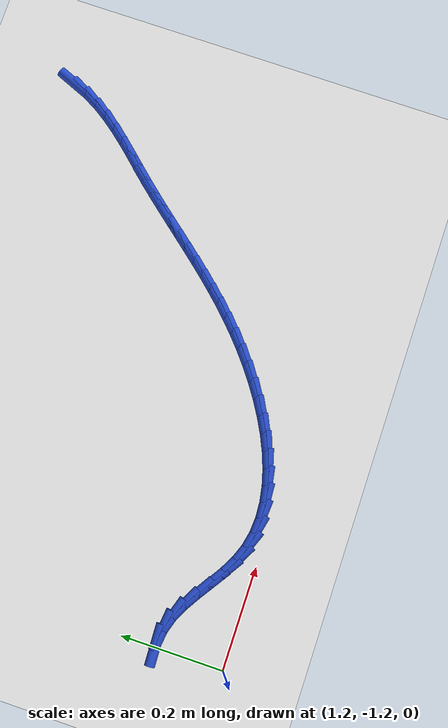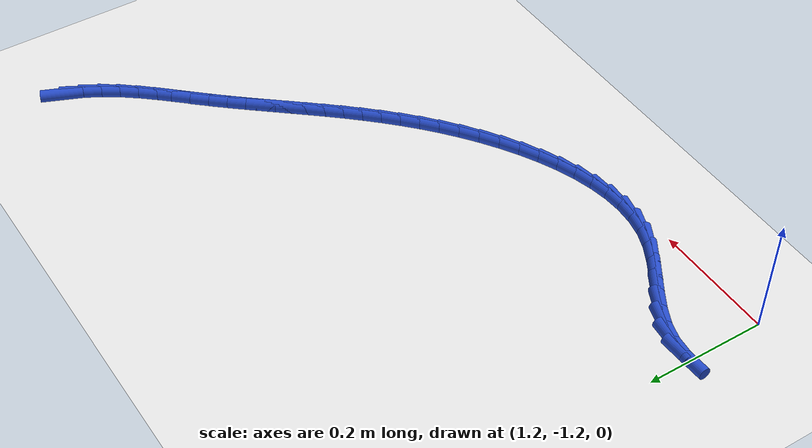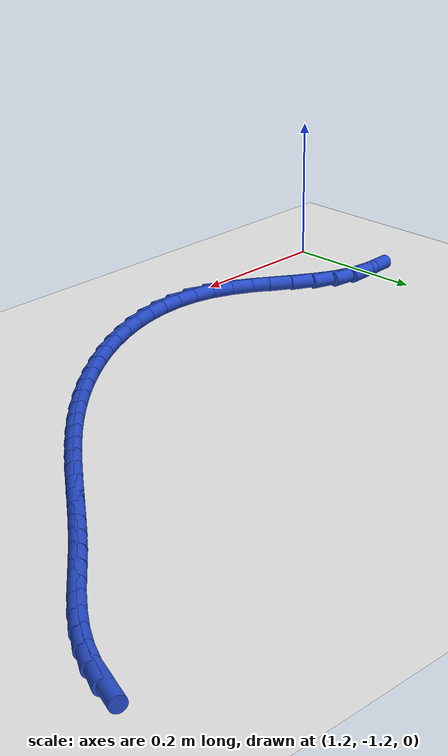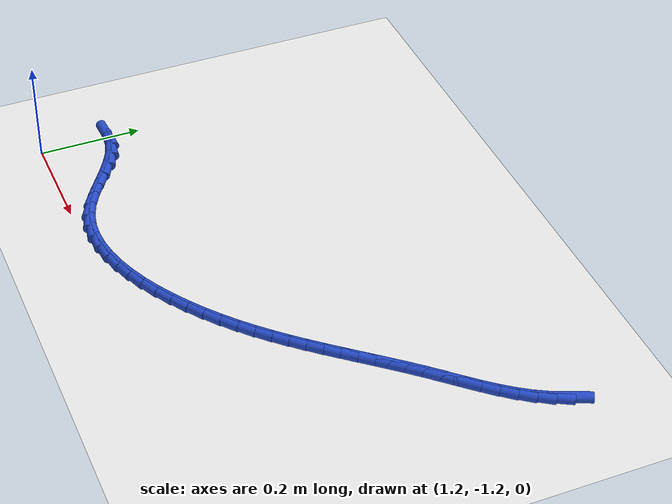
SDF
<sdf version="1.6">
 <world name="default">
  <model name="ground_plane">
   <static>1</static>
   <link name="link">
    <collision name="collision">
     <geometry><plane><normal>0 0 1</normal><size>100 100</size></plane></geometry>
     <surface><friction><ode><mu>100</mu><mu2>50</mu2></ode></friction></surface>
    </collision>
    <visual name="visual">
     <cast_shadows>0</cast_shadows>
     <geometry><plane><normal>0 0 1</normal><size>100 100</size></plane></geometry>
     <material>
      <script><uri>file://media/materials/scripts/gazebo.material</uri><name>Gazebo/WhiteGlow</name></script>
     </material>
    </visual>
   </link>
  </model>
  <model name="line">
   <link name="link_141">
    <pose>2.184938260751431 -0.564545507955103 0.01 0 1.57 1.1751922833800879</pose>
    <collision name="collision">
     <geometry><cylinder><radius>0.01</radius><length>0.08</length></cylinder></geometry>
    </collision>
    <visual name="visual">
     <material>
      <script><name>Gazebo/Blue</name><uri>file://media/materials/scripts/gazebo.material</uri></script>
     </material>
     <geometry><cylinder><radius>0.01</radius><length>0.08</length></cylinder></geometry>
    </visual>
   </link>
   <link name="link_142">
    <pose>2.173055490699033 -0.5929989830696546 0.01 0 1.57 1.0701133090406034</pose>
    <collision name="collision">
     <geometry><cylinder><radius>0.01</radius><length>0.08</length></cylinder></geometry>
    </collision>
    <visual name="visual">
     <material>
      <script><name>Gazebo/Blue</name><uri>file://media/materials/scripts/gazebo.material</uri></script>
     </material>
     <geometry><cylinder><radius>0.01</radius><length>0.08</length></cylinder></geometry>
    </visual>
   </link>
   <link name="link_143">
    <pose>2.158248025143962 -0.6200599201007736 0.01 0 1.57 0.9836360142983622</pose>
    <collision name="collision">
     <geometry><cylinder><radius>0.01</radius><length>0.08</length></cylinder></geometry>
    </collision>
    <visual name="visual">
     <material>
      <script><name>Gazebo/Blue</name><uri>file://media/materials/scripts/gazebo.material</uri></script>
     </material>
     <geometry><cylinder><radius>0.01</radius><length>0.08</length></cylinder></geometry>
    </visual>
   </link>
   <link name="link_144">
    <pose>2.1410247435352545 -0.6459420499705235 0.01 0 1.57 0.9171828220768264</pose>
    <collision name="collision">
     <geometry><cylinder><radius>0.01</radius><length>0.08</length></cylinder></geometry>
    </collision>
    <visual name="visual">
     <material>
      <script><name>Gazebo/Blue</name><uri>file://media/materials/scripts/gazebo.material</uri></script>
     </material>
     <geometry><cylinder><radius>0.01</radius><length>0.08</length></cylinder></geometry>
    </visual>
   </link>
   <link name="link_145">
    <pose>2.121927975406993 -0.6708750982115008 0.01 0 1.57 0.86999928073327</pose>
    <collision name="collision">
     <geometry><cylinder><radius>0.01</radius><length>0.08</length></cylinder></geometry>
    </collision>
    <visual name="visual">
     <material>
      <script><name>Gazebo/Blue</name><uri>file://media/materials/scripts/gazebo.material</uri></script>
     </material>
     <geometry><cylinder><radius>0.01</radius><length>0.08</length></cylinder></geometry>
    </visual>
   </link>
   <link name="link_146">
    <pose>2.1015000502932617 -0.6950887903563026 0.01 0 1.57 0.8411317416965667</pose>
    <collision name="collision">
     <geometry><cylinder><radius>0.01</radius><length>0.08</length></cylinder></geometry>
    </collision>
    <visual name="visual">
     <material>
      <script><name>Gazebo/Blue</name><uri>file://media/materials/scripts/gazebo.material</uri></script>
     </material>
     <geometry><cylinder><radius>0.01</radius><length>0.08</length></cylinder></geometry>
    </visual>
   </link>
   <link name="link_147">
    <pose>2.0802832977281445 -0.7188128519375258 0.01 0 1.57 0.8299051769172623</pose>
    <collision name="collision">
     <geometry><cylinder><radius>0.01</radius><length>0.08</length></cylinder></geometry>
    </collision>
    <visual name="visual">
     <material>
      <script><name>Gazebo/Blue</name><uri>file://media/materials/scripts/gazebo.material</uri></script>
     </material>
     <geometry><cylinder><radius>0.01</radius><length>0.08</length></cylinder></geometry>
    </visual>
   </link>
   <link name="link_148">
    <pose>2.0588200472457263 -0.7422770084877662 0.01 0 1.57 0.8361344795080248</pose>
    <collision name="collision">
     <geometry><cylinder><radius>0.01</radius><length>0.08</length></cylinder></geometry>
    </collision>
    <visual name="visual">
     <material>
      <script><name>Gazebo/Blue</name><uri>file://media/materials/scripts/gazebo.material</uri></script>
     </material>
     <geometry><cylinder><radius>0.01</radius><length>0.08</length></cylinder></geometry>
    </visual>
   </link>
   <link name="link_149">
    <pose>2.0376514302869397 -0.765710516710453 0.01 0 1.57 0.8534761078310631</pose>
    <collision name="collision">
     <geometry><cylinder><radius>0.01</radius><length>0.08</length></cylinder></geometry>
    </collision>
    <visual name="visual">
     <material>
      <script><name>Gazebo/Blue</name><uri>file://media/materials/scripts/gazebo.material</uri></script>
     </material>
     <geometry><cylinder><radius>0.01</radius><length>0.08</length></cylinder></geometry>
    </visual>
   </link>
   <link name="link_150">
    <pose>2.0171080923291673 -0.7892602674602749 0.01 0 1.57 0.8676310551891793</pose>
    <collision name="collision">
     <geometry><cylinder><radius>0.01</radius><length>0.08</length></cylinder></geometry>
    </collision>
    <visual name="visual">
     <material>
      <script><name>Gazebo/Blue</name><uri>file://media/materials/scripts/gazebo.material</uri></script>
     </material>
     <geometry><cylinder><radius>0.01</radius><length>0.08</length></cylinder></geometry>
    </visual>
   </link>
   <link name="link_151">
    <pose>1.997070813312543 -0.8128971134553685 0.01 0 1.57 0.8765172694057684</pose>
    <collision name="collision">
     <geometry><cylinder><radius>0.01</radius><length>0.08</length></cylinder></geometry>
    </collision>
    <visual name="visual">
     <material>
      <script><name>Gazebo/Blue</name><uri>file://media/materials/scripts/gazebo.material</uri></script>
     </material>
     <geometry><cylinder><radius>0.01</radius><length>0.08</length></cylinder></geometry>
    </visual>
   </link>
   <link name="link_152">
    <pose>1.977362452119078 -0.8365692421632678 0.01 0 1.57 0.8799730195508322</pose>
    <collision name="collision">
     <geometry><cylinder><radius>0.01</radius><length>0.08</length></cylinder></geometry>
    </collision>
    <visual name="visual">
     <material>
      <script><name>Gazebo/Blue</name><uri>file://media/materials/scripts/gazebo.material</uri></script>
     </material>
     <geometry><cylinder><radius>0.01</radius><length>0.08</length></cylinder></geometry>
    </visual>
   </link>
   <link name="link_153">
    <pose>1.9578058676307812 -0.8602248410515059 0.01 0 1.57 0.8779148883610252</pose>
    <collision name="collision">
     <geometry><cylinder><radius>0.01</radius><length>0.08</length></cylinder></geometry>
    </collision>
    <visual name="visual">
     <material>
      <script><name>Gazebo/Blue</name><uri>file://media/materials/scripts/gazebo.material</uri></script>
     </material>
     <geometry><cylinder><radius>0.01</radius><length>0.08</length></cylinder></geometry>
    </visual>
   </link>
   <link name="link_154">
    <pose>1.9382239187296644 -0.8838120975876167 0.01 0 1.57 0.8703381463148445</pose>
    <collision name="collision">
     <geometry><cylinder><radius>0.01</radius><length>0.08</length></cylinder></geometry>
    </collision>
    <visual name="visual">
     <material>
      <script><name>Gazebo/Blue</name><uri>file://media/materials/scripts/gazebo.material</uri></script>
     </material>
     <geometry><cylinder><radius>0.01</radius><length>0.08</length></cylinder></geometry>
    </visual>
   </link>
   <link name="link_155">
    <pose>1.9184394642977347 -0.9072791992391338 0.01 0 1.57 0.8573191879134187</pose>
    <collision name="collision">
     <geometry><cylinder><radius>0.01</radius><length>0.08</length></cylinder></geometry>
    </collision>
    <visual name="visual">
     <material>
      <script><name>Gazebo/Blue</name><uri>file://media/materials/scripts/gazebo.material</uri></script>
     </material>
     <geometry><cylinder><radius>0.01</radius><length>0.08</length></cylinder></geometry>
    </visual>
   </link>
   <link name="link_156">
    <pose>1.898275363217004 -0.9305743334735894 0.01 0 1.57 0.8390198116128015</pose>
    <collision name="collision">
     <geometry><cylinder><radius>0.01</radius><length>0.08</length></cylinder></geometry>
    </collision>
    <visual name="visual">
     <material>
      <script><name>Gazebo/Blue</name><uri>file://media/materials/scripts/gazebo.material</uri></script>
     </material>
     <geometry><cylinder><radius>0.01</radius><length>0.08</length></cylinder></geometry>
    </visual>
   </link>
   <link name="link_157">
    <pose>1.877554474369483 -0.9536456877585184 0.01 0 1.57 0.8156923165781631</pose>
    <collision name="collision">
     <geometry><cylinder><radius>0.01</radius><length>0.08</length></cylinder></geometry>
    </collision>
    <visual name="visual">
     <material>
      <script><name>Gazebo/Blue</name><uri>file://media/materials/scripts/gazebo.material</uri></script>
     </material>
     <geometry><cylinder><radius>0.01</radius><length>0.08</length></cylinder></geometry>
    </visual>
   </link>
   <link name="link_158">
    <pose>1.8560996566371797 -0.9764414495614535 0.01 0 1.57 0.7876836680618535</pose>
    <collision name="collision">
     <geometry><cylinder><radius>0.01</radius><length>0.08</length></cylinder></geometry>
    </collision>
    <visual name="visual">
     <material>
      <script><name>Gazebo/Blue</name><uri>file://media/materials/scripts/gazebo.material</uri></script>
     </material>
     <geometry><cylinder><radius>0.01</radius><length>0.08</length></cylinder></geometry>
    </visual>
   </link>
   <link name="link_159">
    <pose>1.8337337689021052 -0.9989098063499285 0.01 0 1.57 0.7554365004840043</pose>
    <collision name="collision">
     <geometry><cylinder><radius>0.01</radius><length>0.08</length></cylinder></geometry>
    </collision>
    <visual name="visual">
     <material>
      <script><name>Gazebo/Blue</name><uri>file://media/materials/scripts/gazebo.material</uri></script>
     </material>
     <geometry><cylinder><radius>0.01</radius><length>0.08</length></cylinder></geometry>
    </visual>
   </link>
   <link name="link_160">
    <pose>1.8102796700462689 -1.0209989455914767 0.01 0 1.57 0.71948466543626</pose>
    <collision name="collision">
     <geometry><cylinder><radius>0.01</radius><length>0.08</length></cylinder></geometry>
    </collision>
    <visual name="visual">
     <material>
      <script><name>Gazebo/Blue</name><uri>file://media/materials/scripts/gazebo.material</uri></script>
     </material>
     <geometry><cylinder><radius>0.01</radius><length>0.08</length></cylinder></geometry>
    </visual>
   </link>
   <link name="link_161">
    <pose>1.7855602189516813 -1.0426570547536318 0.01 0 1.57 0.6804545802559089</pose>
    <collision name="collision">
     <geometry><cylinder><radius>0.01</radius><length>0.08</length></cylinder></geometry>
    </collision>
    <visual name="visual">
     <material>
      <script><name>Gazebo/Blue</name><uri>file://media/materials/scripts/gazebo.material</uri></script>
     </material>
     <geometry><cylinder><radius>0.01</radius><length>0.08</length></cylinder></geometry>
    </visual>
   </link>
   <link name="link_162">
    <pose>1.7594157776928234 -1.0638187183816896 0.01 0 1.57 0.6387624760320602</pose>
    <collision name="collision">
     <geometry><cylinder><radius>0.01</radius><length>0.08</length></cylinder></geometry>
    </collision>
    <visual name="visual">
     <material>
      <script><name>Gazebo/Blue</name><uri>file://media/materials/scripts/gazebo.material</uri></script>
     </material>
     <geometry><cylinder><radius>0.01</radius><length>0.08</length></cylinder></geometry>
    </visual>
   </link>
   <link name="link_163">
    <pose>1.7319062490436534 -1.084247901000171 0.01 0 1.57 0.5936404712560993</pose>
    <collision name="collision">
     <geometry><cylinder><radius>0.01</radius><length>0.08</length></cylinder></geometry>
    </collision>
    <visual name="visual">
     <material>
      <script><name>Gazebo/Blue</name><uri>file://media/materials/scripts/gazebo.material</uri></script>
     </material>
     <geometry><cylinder><radius>0.01</radius><length>0.08</length></cylinder></geometry>
    </visual>
   </link>
   <link name="link_164">
    <pose>1.7032411968831696 -1.1035922553020705 0.01 0 1.57 0.5438905497274338</pose>
    <collision name="collision">
     <geometry><cylinder><radius>0.01</radius><length>0.08</length></cylinder></geometry>
    </collision>
    <visual name="visual">
     <material>
      <script><name>Gazebo/Blue</name><uri>file://media/materials/scripts/gazebo.material</uri></script>
     </material>
     <geometry><cylinder><radius>0.01</radius><length>0.08</length></cylinder></geometry>
    </visual>
   </link>
   <link name="link_165">
    <pose>1.6736330659392273 -1.1214971950766497 0.01 0 1.57 0.48816607816932334</pose>
    <collision name="collision">
     <geometry><cylinder><radius>0.01</radius><length>0.08</length></cylinder></geometry>
    </collision>
    <visual name="visual">
     <material>
      <script><name>Gazebo/Blue</name><uri>file://media/materials/scripts/gazebo.material</uri></script>
     </material>
     <geometry><cylinder><radius>0.01</radius><length>0.08</length></cylinder></geometry>
    </visual>
   </link>
   <link name="link_166">
    <pose>1.6432943009396805 -1.137608134113169 0.01 0 1.57 0.4249196909398567</pose>
    <collision name="collision">
     <geometry><cylinder><radius>0.01</radius><length>0.08</length></cylinder></geometry>
    </collision>
    <visual name="visual">
     <material>
      <script><name>Gazebo/Blue</name><uri>file://media/materials/scripts/gazebo.material</uri></script>
     </material>
     <geometry><cylinder><radius>0.01</radius><length>0.08</length></cylinder></geometry>
    </visual>
   </link>
   <link name="link_167">
    <pose>1.6124373466123838 -1.1515704862008895 0.01 0 1.57 0.3523738633710372</pose>
    <collision name="collision">
     <geometry><cylinder><radius>0.01</radius><length>0.08</length></cylinder></geometry>
    </collision>
    <visual name="visual">
     <material>
      <script><name>Gazebo/Blue</name><uri>file://media/materials/scripts/gazebo.material</uri></script>
     </material>
     <geometry><cylinder><radius>0.01</radius><length>0.08</length></cylinder></geometry>
    </visual>
   </link>
   <link name="link_168">
    <pose>1.581274647685191 -1.163029665129072 0.01 0 1.57 0.2685452602610934</pose>
    <collision name="collision">
     <geometry><cylinder><radius>0.01</radius><length>0.08</length></cylinder></geometry>
    </collision>
    <visual name="visual">
     <material>
      <script><name>Gazebo/Blue</name><uri>file://media/materials/scripts/gazebo.material</uri></script>
     </material>
     <geometry><cylinder><radius>0.01</radius><length>0.08</length></cylinder></geometry>
    </visual>
   </link>
   <link name="link_169">
    <pose>1.5500186488859584 -1.171631084686978 0.01 0 1.57 0.1713792231187821</pose>
    <collision name="collision">
     <geometry><cylinder><radius>0.01</radius><length>0.08</length></cylinder></geometry>
    </collision>
    <visual name="visual">
     <material>
      <script><name>Gazebo/Blue</name><uri>file://media/materials/scripts/gazebo.material</uri></script>
     </material>
     <geometry><cylinder><radius>0.01</radius><length>0.08</length></cylinder></geometry>
    </visual>
   </link>
   <link name="link_170">
    <pose>1.518881794942538 -1.1770201586638678 0.01 0 1.57 0.05908151061617122</pose>
    <collision name="collision">
     <geometry><cylinder><radius>0.01</radius><length>0.08</length></cylinder></geometry>
    </collision>
    <visual name="visual">
     <material>
      <script><name>Gazebo/Blue</name><uri>file://media/materials/scripts/gazebo.material</uri></script>
     </material>
     <geometry><cylinder><radius>0.01</radius><length>0.08</length></cylinder></geometry>
    </visual>
   </link>
   <link name="link_171">
    <pose>1.4880765305827865 -1.1788423008490025 0.01 0 1.57 -0.06926412029787586</pose>
    <collision name="collision">
     <geometry><cylinder><radius>0.01</radius><length>0.08</length></cylinder></geometry>
    </collision>
    <visual name="visual">
     <material>
      <script><name>Gazebo/Blue</name><uri>file://media/materials/scripts/gazebo.material</uri></script>
     </material>
     <geometry><cylinder><radius>0.01</radius><length>0.08</length></cylinder></geometry>
    </visual>
   </link>
   <link name="link_172">
    <pose>1.457815300534558 -1.1767429250316437 0.01 0 1.57 -0.2128112387649276</pose>
    <collision name="collision">
     <geometry><cylinder><radius>0.01</radius><length>0.08</length></cylinder></geometry>
    </collision>
    <visual name="visual">
     <material>
      <script><name>Gazebo/Blue</name><uri>file://media/materials/scripts/gazebo.material</uri></script>
     </material>
     <geometry><cylinder><radius>0.01</radius><length>0.08</length></cylinder></geometry>
    </visual>
   </link>
   <link name="link_173">
    <pose>1.4283105495257071 -1.1703674450010522 0.01 0 1.57 -0.3673150863494378</pose>
    <collision name="collision">
     <geometry><cylinder><radius>0.01</radius><length>0.08</length></cylinder></geometry>
    </collision>
    <visual name="visual">
     <material>
      <script><name>Gazebo/Blue</name><uri>file://media/materials/scripts/gazebo.material</uri></script>
     </material>
     <geometry><cylinder><radius>0.01</radius><length>0.08</length></cylinder></geometry>
    </visual>
   </link>
   <link name="link_174">
    <pose>1.3997682661832433 -1.1593850153933891 0.01 0 1.57 -0.4983990863636142</pose>
    <collision name="collision">
     <geometry><cylinder><radius>0.01</radius><length>0.08</length></cylinder></geometry>
    </collision>
    <visual name="visual">
     <material>
      <script><name>Gazebo/Blue</name><uri>file://media/materials/scripts/gazebo.material</uri></script>
     </material>
     <geometry><cylinder><radius>0.01</radius><length>0.08</length></cylinder></geometry>
    </visual>
   </link>
   <link name="link_175">
    <pose>1.372152182289394 -1.1443556354585112 0.01 0 1.57 -0.571261512682289</pose>
    <collision name="collision">
     <geometry><cylinder><radius>0.01</radius><length>0.08</length></cylinder></geometry>
    </collision>
    <visual name="visual">
     <material>
      <script><name>Gazebo/Blue</name><uri>file://media/materials/scripts/gazebo.material</uri></script>
     </material>
     <geometry><cylinder><radius>0.01</radius><length>0.08</length></cylinder></geometry>
    </visual>
   </link>
   <link name="link_176">
    <pose>1.34511628542174 -1.1269783185227644 0.01 0 1.57 -0.5898236023872648</pose>
    <collision name="collision">
     <geometry><cylinder><radius>0.01</radius><length>0.08</length></cylinder></geometry>
    </collision>
    <visual name="visual">
     <material>
      <script><name>Gazebo/Blue</name><uri>file://media/materials/scripts/gazebo.material</uri></script>
     </material>
     <geometry><cylinder><radius>0.01</radius><length>0.08</length></cylinder></geometry>
    </visual>
   </link>
   <link name="link_177">
    <pose>1.3182943535411709 -1.1090263941952272 0.01 0 1.57 -0.5557774202774375</pose>
    <collision name="collision">
     <geometry><cylinder><radius>0.01</radius><length>0.08</length></cylinder></geometry>
    </collision>
    <visual name="visual">
     <material>
      <script><name>Gazebo/Blue</name><uri>file://media/materials/scripts/gazebo.material</uri></script>
     </material>
     <geometry><cylinder><radius>0.01</radius><length>0.08</length></cylinder></geometry>
    </visual>
   </link>
   <link name="link_178">
    <pose>1.2913201646085808 -1.0922731920849815 0.01 0 1.57 -0.46466020283749226</pose>
    <collision name="collision">
     <geometry><cylinder><radius>0.01</radius><length>0.08</length></cylinder></geometry>
    </collision>
    <visual name="visual">
     <material>
      <script><name>Gazebo/Blue</name><uri>file://media/materials/scripts/gazebo.material</uri></script>
     </material>
     <geometry><cylinder><radius>0.01</radius><length>0.08</length></cylinder></geometry>
    </visual>
   </link>
   <link name="link_179">
    <pose>1.2638274965848602 -1.0784920418011068 0.01 0 1.57 -0.30836440158074496</pose>
    <collision name="collision">
     <geometry><cylinder><radius>0.01</radius><length>0.08</length></cylinder></geometry>
    </collision>
    <visual name="visual">
     <material>
      <script><name>Gazebo/Blue</name><uri>file://media/materials/scripts/gazebo.material</uri></script>
     </material>
     <geometry><cylinder><radius>0.01</radius><length>0.08</length></cylinder></geometry>
    </visual>
   </link>
   <link name="link_180">
    <pose>1.2354506067364026 -1.0694532923622018 0.01 0 1.57 -0.1136982120764946</pose>
    <collision name="collision">
     <geometry><cylinder><radius>0.01</radius><length>0.08</length></cylinder></geometry>
    </collision>
    <visual name="visual">
     <material>
      <script><name>Gazebo/Blue</name><uri>file://media/materials/scripts/gazebo.material</uri></script>
     </material>
     <geometry><cylinder><radius>0.01</radius><length>0.08</length></cylinder></geometry>
    </visual>
   </link>
   <link name="link_181">
    <pose>1.2059590981587145 -1.0660856364964473 0.01 0 1.57 0.040579699510064744</pose>
    <collision name="collision">
     <geometry><cylinder><radius>0.01</radius><length>0.08</length></cylinder></geometry>
    </collision>
    <visual name="visual">
     <material>
      <script><name>Gazebo/Blue</name><uri>file://media/materials/scripts/gazebo.material</uri></script>
     </material>
     <geometry><cylinder><radius>0.01</radius><length>0.08</length></cylinder></geometry>
    </visual>
   </link>
  </model>
 </world>
</sdf>
